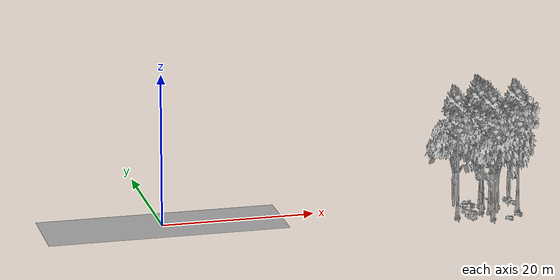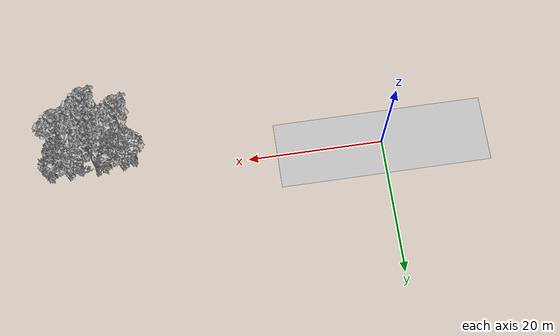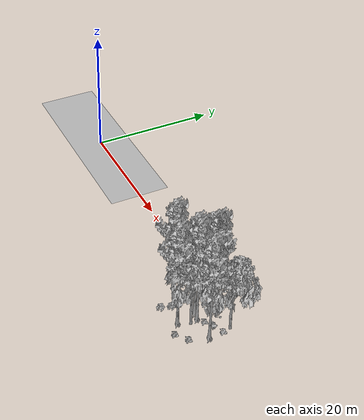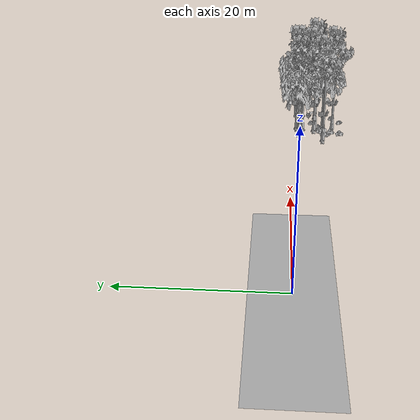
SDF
<sdf version="1.7">
 <world name="default">
  <model name="ground_plane">
   <static>1</static>
   <link name="link">
    <collision name="collision">
     <geometry><plane><normal>0 0 1</normal><size>100 100</size></plane></geometry>
     <surface><contact><ode><min_depth>0.01</min_depth><max_vel>0</max_vel></ode></contact></surface>
    </collision>
    <visual name="grass">
     <cast_shadows>0</cast_shadows>
     <geometry>
      <mesh>
       <scale>0.5814285714285714 0.18142857142857144 0.1</scale>
       <uri>file://grass_plane/meshes/grass_plane.dae</uri>
      </mesh>
     </geometry>
    </visual>
   </link>
  </model>
  <model name="Tree 7">
   <static>1</static>
   <pose>42.68328478525899 -4.185480367363265 0 1.57079 -0 0</pose>
   <link name="link">
    <collision name="collision">
     <geometry><mesh><scale>3.5 5 3.5</scale><uri>model://tree_9/meshes/tree_9.obj</uri></mesh></geometry>
    </collision>
    <visual name="visual">
     <geometry><mesh><scale>3.5 5 3.5</scale><uri>model://tree_9/meshes/tree_9.obj</uri></mesh></geometry>
    </visual>
   </link>
  </model>
  <model name="Tree 42">
   <static>1</static>
   <pose>37.997805025380444 -5.241121096211378 0 1.57079 -0 0</pose>
   <link name="link">
    <collision name="collision">
     <geometry><mesh><scale>3.5 5 3.5</scale><uri>model://tree_9/meshes/tree_9.obj</uri></mesh></geometry>
    </collision>
    <visual name="visual">
     <geometry><mesh><scale>3.5 5 3.5</scale><uri>model://tree_9/meshes/tree_9.obj</uri></mesh></geometry>
    </visual>
   </link>
  </model>
  <model name="Tree 188">
   <static>1</static>
   <pose>42.31279631719492 -2.1107619779656783 0 1.57079 -0 0</pose>
   <link name="link">
    <collision name="collision">
     <geometry><mesh><scale>3.5 5 3.5</scale><uri>model://tree_9/meshes/tree_9.obj</uri></mesh></geometry>
    </collision>
    <visual name="visual">
     <geometry><mesh><scale>3.5 5 3.5</scale><uri>model://tree_9/meshes/tree_9.obj</uri></mesh></geometry>
    </visual>
   </link>
  </model>
  <model name="Tree 259">
   <static>1</static>
   <pose>41.60066086877879 -3.9607061621130413 0 1.57079 -0 0</pose>
   <link name="link">
    <collision name="collision">
     <geometry><mesh><scale>3.5 5 3.5</scale><uri>model://tree_9/meshes/tree_9.obj</uri></mesh></geometry>
    </collision>
    <visual name="visual">
     <geometry><mesh><scale>3.5 5 3.5</scale><uri>model://tree_9/meshes/tree_9.obj</uri></mesh></geometry>
    </visual>
   </link>
  </model>
  <model name="Tree 340">
   <static>1</static>
   <pose>42.28104434225715 -1.1643704032233622 0 1.57079 -0 0</pose>
   <link name="link">
    <collision name="collision">
     <geometry><mesh><scale>3.5 5 3.5</scale><uri>model://tree_9/meshes/tree_9.obj</uri></mesh></geometry>
    </collision>
    <visual name="visual">
     <geometry><mesh><scale>3.5 5 3.5</scale><uri>model://tree_9/meshes/tree_9.obj</uri></mesh></geometry>
    </visual>
   </link>
  </model>
  <model name="Tree 344">
   <static>1</static>
   <pose>42.31299076404562 -6.957617625895283 0 1.57079 -0 0</pose>
   <link name="link">
    <collision name="collision">
     <geometry><mesh><scale>3.5 5 3.5</scale><uri>model://tree_9/meshes/tree_9.obj</uri></mesh></geometry>
    </collision>
    <visual name="visual">
     <geometry><mesh><scale>3.5 5 3.5</scale><uri>model://tree_9/meshes/tree_9.obj</uri></mesh></geometry>
    </visual>
   </link>
  </model>
  <model name="Tree 361">
   <static>1</static>
   <pose>46.1524507962003 -1.0600899191294282 0 1.57079 -0 0</pose>
   <link name="link">
    <collision name="collision">
     <geometry><mesh><scale>3.5 5 3.5</scale><uri>model://tree_2/meshes/tree_2.obj</uri></mesh></geometry>
    </collision>
    <visual name="visual">
     <geometry><mesh><scale>3.5 5 3.5</scale><uri>model://tree_2/meshes/tree_2.obj</uri></mesh></geometry>
    </visual>
   </link>
  </model>
  <model name="Tree 367">
   <static>1</static>
   <pose>43.20016246425209 -5.442978459638242 0 1.57079 -0 0</pose>
   <link name="link">
    <collision name="collision">
     <geometry><mesh><scale>3.5 5 3.5</scale><uri>model://tree_2/meshes/tree_2.obj</uri></mesh></geometry>
    </collision>
    <visual name="visual">
     <geometry><mesh><scale>3.5 5 3.5</scale><uri>model://tree_2/meshes/tree_2.obj</uri></mesh></geometry>
    </visual>
   </link>
  </model>
  <model name="Tree 395">
   <static>1</static>
   <pose>38.523277851552734 -1.395738198951923 0 1.57079 -0 0</pose>
   <link name="link">
    <collision name="collision">
     <geometry><mesh><scale>3.5 5 3.5</scale><uri>model://tree_2/meshes/tree_2.obj</uri></mesh></geometry>
    </collision>
    <visual name="visual">
     <geometry><mesh><scale>3.5 5 3.5</scale><uri>model://tree_2/meshes/tree_2.obj</uri></mesh></geometry>
    </visual>
   </link>
  </model>
  <model name="Tree 438">
   <static>1</static>
   <pose>46.425098387874726 -4.308731537113138 0 1.57079 -0 0</pose>
   <link name="link">
    <collision name="collision">
     <geometry><mesh><scale>3.5 5 3.5</scale><uri>model://tree_9/meshes/tree_9.obj</uri></mesh></geometry>
    </collision>
    <visual name="visual">
     <geometry><mesh><scale>3.5 5 3.5</scale><uri>model://tree_9/meshes/tree_9.obj</uri></mesh></geometry>
    </visual>
   </link>
  </model>
  <model name="Bush 49">
   <static>1</static>
   <pose>45.70690726925075 -7.058646206771172 0 1.57079 -0 0</pose>
   <link name="link">
    <collision name="collision">
     <geometry><mesh><scale>2 2 2</scale><uri>model://bush_2/meshes/bush_2.obj</uri></mesh></geometry>
     <surface><contact><collide_without_contact>false</collide_without_contact></contact></surface>
    </collision>
    <visual name="visual">
     <geometry><mesh><scale>2 2 2</scale><uri>model://bush_2/meshes/bush_2.obj</uri></mesh></geometry>
    </visual>
   </link>
  </model>
  <model name="Bush 57">
   <static>1</static>
   <pose>43.61864704970793 -1.715466843504581 0 1.57079 -0 0</pose>
   <link name="link">
    <collision name="collision">
     <geometry><mesh><scale>2 2 2</scale><uri>model://bush_4/meshes/bush_4.obj</uri></mesh></geometry>
     <surface><contact><collide_without_contact>false</collide_without_contact></contact></surface>
    </collision>
    <visual name="visual">
     <geometry><mesh><scale>2 2 2</scale><uri>model://bush_4/meshes/bush_4.obj</uri></mesh></geometry>
    </visual>
   </link>
  </model>
  <model name="Bush 64">
   <static>1</static>
   <pose>46.4181476497634 -2.227556247625026 0 1.57079 -0 0</pose>
   <link name="link">
    <collision name="collision">
     <geometry><mesh><scale>2 2 2</scale><uri>model://bush_2/meshes/bush_2.obj</uri></mesh></geometry>
     <surface><contact><collide_without_contact>false</collide_without_contact></contact></surface>
    </collision>
    <visual name="visual">
     <geometry><mesh><scale>2 2 2</scale><uri>model://bush_2/meshes/bush_2.obj</uri></mesh></geometry>
    </visual>
   </link>
  </model>
  <model name="Bush 80">
   <static>1</static>
   <pose>45.47917453979636 -3.2552507793197787 0 1.57079 -0 0</pose>
   <link name="link">
    <collision name="collision">
     <geometry><mesh><scale>2 2 2</scale><uri>model://bush_0/meshes/bush_0.obj</uri></mesh></geometry>
     <surface><contact><collide_without_contact>false</collide_without_contact></contact></surface>
    </collision>
    <visual name="visual">
     <geometry><mesh><scale>2 2 2</scale><uri>model://bush_0/meshes/bush_0.obj</uri></mesh></geometry>
    </visual>
   </link>
  </model>
  <model name="Bush 82">
   <static>1</static>
   <pose>44.10352061152098 -8.28906472600853 0 1.57079 -0 0</pose>
   <link name="link">
    <collision name="collision">
     <geometry><mesh><scale>2 2 2</scale><uri>model://bush_2/meshes/bush_2.obj</uri></mesh></geometry>
     <surface><contact><collide_without_contact>false</collide_without_contact></contact></surface>
    </collision>
    <visual name="visual">
     <geometry><mesh><scale>2 2 2</scale><uri>model://bush_2/meshes/bush_2.obj</uri></mesh></geometry>
    </visual>
   </link>
  </model>
  <model name="Bush 125">
   <static>1</static>
   <pose>40.83285210427813 -2.0638856482038204 0 1.57079 -0 0</pose>
   <link name="link">
    <collision name="collision">
     <geometry><mesh><scale>2 2 2</scale><uri>model://bush_2/meshes/bush_2.obj</uri></mesh></geometry>
     <surface><contact><collide_without_contact>false</collide_without_contact></contact></surface>
    </collision>
    <visual name="visual">
     <geometry><mesh><scale>2 2 2</scale><uri>model://bush_2/meshes/bush_2.obj</uri></mesh></geometry>
    </visual>
   </link>
  </model>
  <model name="Bush 176">
   <static>1</static>
   <pose>39.32742693830265 -6.016849932903485 0 1.57079 -0 0</pose>
   <link name="link">
    <collision name="collision">
     <geometry><mesh><scale>2 2 2</scale><uri>model://bush_2/meshes/bush_2.obj</uri></mesh></geometry>
     <surface><contact><collide_without_contact>false</collide_without_contact></contact></surface>
    </collision>
    <visual name="visual">
     <geometry><mesh><scale>2 2 2</scale><uri>model://bush_2/meshes/bush_2.obj</uri></mesh></geometry>
    </visual>
   </link>
  </model>
  <model name="Bush 230">
   <static>1</static>
   <pose>39.73065727352537 -6.464533950051917 0 1.57079 -0 0</pose>
   <link name="link">
    <collision name="collision">
     <geometry><mesh><scale>2 2 2</scale><uri>model://bush_3/meshes/bush_3.obj</uri></mesh></geometry>
     <surface><contact><collide_without_contact>false</collide_without_contact></contact></surface>
    </collision>
    <visual name="visual">
     <geometry><mesh><scale>2 2 2</scale><uri>model://bush_3/meshes/bush_3.obj</uri></mesh></geometry>
    </visual>
   </link>
  </model>
  <model name="Bush 244">
   <static>1</static>
   <pose>43.759418459087115 -3.6433713078031555 0 1.57079 -0 0</pose>
   <link name="link">
    <collision name="collision">
     <geometry><mesh><scale>2 2 2</scale><uri>model://bush_2/meshes/bush_2.obj</uri></mesh></geometry>
     <surface><contact><collide_without_contact>false</collide_without_contact></contact></surface>
    </collision>
    <visual name="visual">
     <geometry><mesh><scale>2 2 2</scale><uri>model://bush_2/meshes/bush_2.obj</uri></mesh></geometry>
    </visual>
   </link>
  </model>
  <model name="Bush 269">
   <static>1</static>
   <pose>39.266823863875416 -7.888366119434616 0 1.57079 -0 0</pose>
   <link name="link">
    <collision name="collision">
     <geometry><mesh><scale>2 2 2</scale><uri>model://bush_3/meshes/bush_3.obj</uri></mesh></geometry>
     <surface><contact><collide_without_contact>false</collide_without_contact></contact></surface>
    </collision>
    <visual name="visual">
     <geometry><mesh><scale>2 2 2</scale><uri>model://bush_3/meshes/bush_3.obj</uri></mesh></geometry>
    </visual>
   </link>
  </model>
  <model name="Bush 287">
   <static>1</static>
   <pose>39.3603900609954 -5.049164055293767 0 1.57079 -0 0</pose>
   <link name="link">
    <collision name="collision">
     <geometry><mesh><scale>2 2 2</scale><uri>model://bush_1/meshes/bush_1.obj</uri></mesh></geometry>
     <surface><contact><collide_without_contact>false</collide_without_contact></contact></surface>
    </collision>
    <visual name="visual">
     <geometry><mesh><scale>2 2 2</scale><uri>model://bush_1/meshes/bush_1.obj</uri></mesh></geometry>
    </visual>
   </link>
  </model>
  <model name="Bush 299">
   <static>1</static>
   <pose>39.220835825213555 -5.374163678868706 0 1.57079 -0 0</pose>
   <link name="link">
    <collision name="collision">
     <geometry><mesh><scale>2 2 2</scale><uri>model://bush_3/meshes/bush_3.obj</uri></mesh></geometry>
     <surface><contact><collide_without_contact>false</collide_without_contact></contact></surface>
    </collision>
    <visual name="visual">
     <geometry><mesh><scale>2 2 2</scale><uri>model://bush_3/meshes/bush_3.obj</uri></mesh></geometry>
    </visual>
   </link>
  </model>
 </world>
</sdf>
